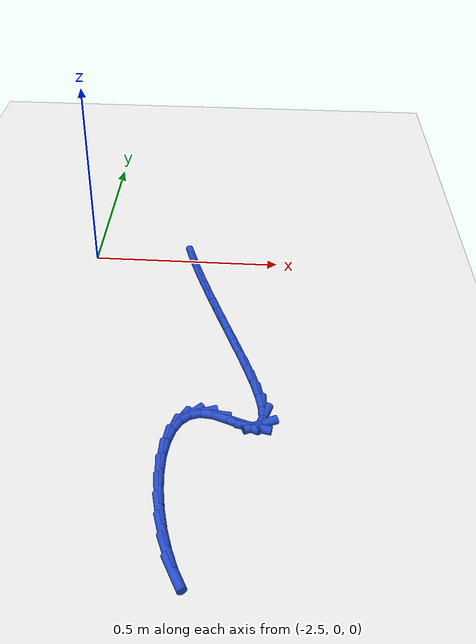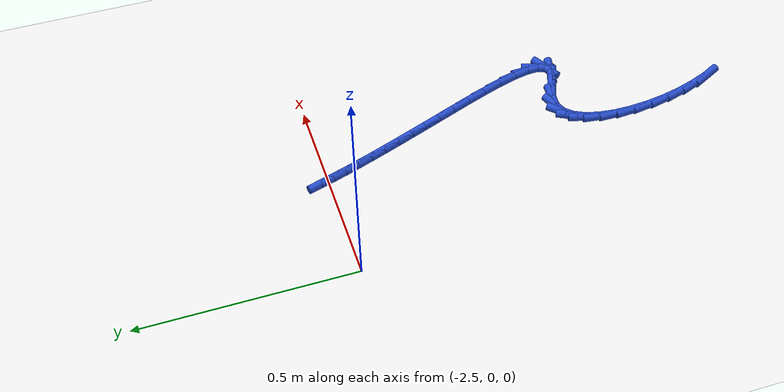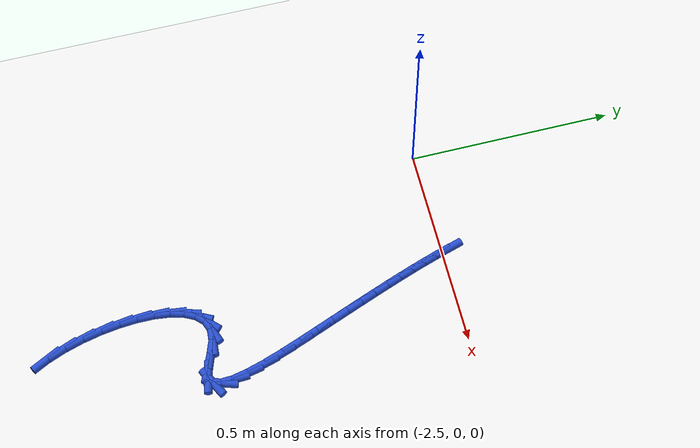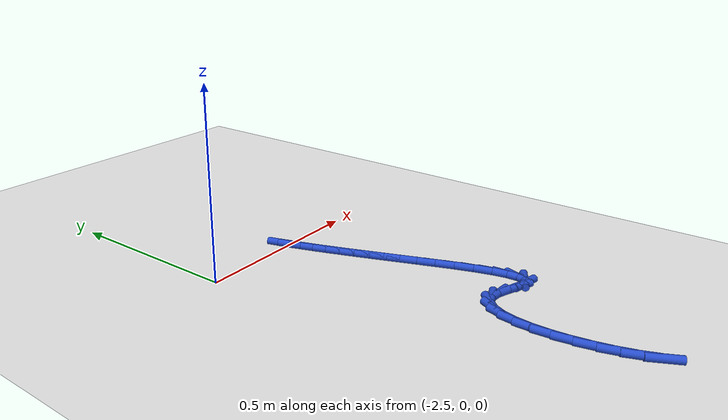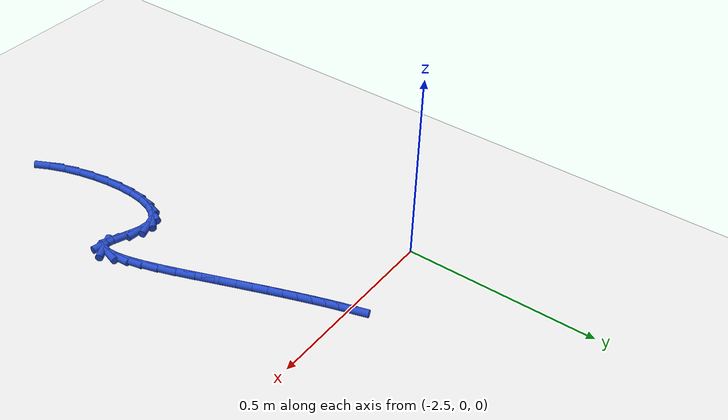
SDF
<sdf version="1.6">
 <world name="default">
  <model name="ground_plane">
   <static>1</static>
   <link name="link">
    <collision name="collision">
     <geometry><plane><normal>0 0 1</normal><size>100 100</size></plane></geometry>
     <surface><friction><ode><mu>100</mu><mu2>50</mu2></ode></friction></surface>
    </collision>
    <visual name="visual">
     <cast_shadows>0</cast_shadows>
     <geometry><plane><normal>0 0 1</normal><size>100 100</size></plane></geometry>
     <material>
      <script><uri>file://media/materials/scripts/gazebo.material</uri><name>Gazebo/WhiteGlow</name></script>
     </material>
    </visual>
   </link>
  </model>
  <model name="line">
   <link name="link_136">
    <pose>-2.2342814332603473 0.012278745024678177 0.01 0 1.57 -1.271771522409557</pose>
    <collision name="collision">
     <geometry><cylinder><radius>0.01</radius><length>0.08</length></cylinder></geometry>
    </collision>
    <visual name="visual">
     <material>
      <script><name>Gazebo/Blue</name><uri>file://media/materials/scripts/gazebo.material</uri></script>
     </material>
     <geometry><cylinder><radius>0.01</radius><length>0.08</length></cylinder></geometry>
    </visual>
   </link>
   <link name="link_137">
    <pose>-2.2251247984309335 -0.017424737117383467 0.01 0 1.57 -1.2547677872495726</pose>
    <collision name="collision">
     <geometry><cylinder><radius>0.01</radius><length>0.08</length></cylinder></geometry>
    </collision>
    <visual name="visual">
     <material>
      <script><name>Gazebo/Blue</name><uri>file://media/materials/scripts/gazebo.material</uri></script>
     </material>
     <geometry><cylinder><radius>0.01</radius><length>0.08</length></cylinder></geometry>
    </visual>
   </link>
   <link name="link_138">
    <pose>-2.215088519485784 -0.04811788806376697 0.01 0 1.57 -1.2403514606112411</pose>
    <collision name="collision">
     <geometry><cylinder><radius>0.01</radius><length>0.08</length></cylinder></geometry>
    </collision>
    <visual name="visual">
     <material>
      <script><name>Gazebo/Blue</name><uri>file://media/materials/scripts/gazebo.material</uri></script>
     </material>
     <geometry><cylinder><radius>0.01</radius><length>0.08</length></cylinder></geometry>
    </visual>
   </link>
   <link name="link_139">
    <pose>-2.2041684321250394 -0.07995283531507365 0.01 0 1.57 -1.2284064452120103</pose>
    <collision name="collision">
     <geometry><cylinder><radius>0.01</radius><length>0.08</length></cylinder></geometry>
    </collision>
    <visual name="visual">
     <material>
      <script><name>Gazebo/Blue</name><uri>file://media/materials/scripts/gazebo.material</uri></script>
     </material>
     <geometry><cylinder><radius>0.01</radius><length>0.08</length></cylinder></geometry>
    </visual>
   </link>
   <link name="link_140">
    <pose>-2.1923603720488414 -0.11308170637190762 0.01 0 1.57 -1.2187722670878132</pose>
    <collision name="collision">
     <geometry><cylinder><radius>0.01</radius><length>0.08</length></cylinder></geometry>
    </collision>
    <visual name="visual">
     <material>
      <script><name>Gazebo/Blue</name><uri>file://media/materials/scripts/gazebo.material</uri></script>
     </material>
     <geometry><cylinder><radius>0.01</radius><length>0.08</length></cylinder></geometry>
    </visual>
   </link>
   <link name="link_141">
    <pose>-2.1796601749573306 -0.14765662873487306 0.01 0 1.57 -1.2112603525877768</pose>
    <collision name="collision">
     <geometry><cylinder><radius>0.01</radius><length>0.08</length></cylinder></geometry>
    </collision>
    <visual name="visual">
     <material>
      <script><name>Gazebo/Blue</name><uri>file://media/materials/scripts/gazebo.material</uri></script>
     </material>
     <geometry><cylinder><radius>0.01</radius><length>0.08</length></cylinder></geometry>
    </visual>
   </link>
   <link name="link_142">
    <pose>-2.1660636765506474 -0.18382972990457105 0.01 0 1.57 -1.2056676313446881</pose>
    <collision name="collision">
     <geometry><cylinder><radius>0.01</radius><length>0.08</length></cylinder></geometry>
    </collision>
    <visual name="visual">
     <material>
      <script><name>Gazebo/Blue</name><uri>file://media/materials/scripts/gazebo.material</uri></script>
     </material>
     <geometry><cylinder><radius>0.01</radius><length>0.08</length></cylinder></geometry>
    </visual>
   </link>
   <link name="link_143">
    <pose>-2.1515667125289335 -0.221753137381607 0.01 0 1.57 -1.2017872265472715</pose>
    <collision name="collision">
     <geometry><cylinder><radius>0.01</radius><length>0.08</length></cylinder></geometry>
    </collision>
    <visual name="visual">
     <material>
      <script><name>Gazebo/Blue</name><uri>file://media/materials/scripts/gazebo.material</uri></script>
     </material>
     <geometry><cylinder><radius>0.01</radius><length>0.08</length></cylinder></geometry>
    </visual>
   </link>
   <link name="link_144">
    <pose>-2.1361651185923303 -0.26157897866658175 0.01 0 1.57 -1.1994163757927954</pose>
    <collision name="collision">
     <geometry><cylinder><radius>0.01</radius><length>0.08</length></cylinder></geometry>
    </collision>
    <visual name="visual">
     <material>
      <script><name>Gazebo/Blue</name><uri>file://media/materials/scripts/gazebo.material</uri></script>
     </material>
     <geometry><cylinder><radius>0.01</radius><length>0.08</length></cylinder></geometry>
    </visual>
   </link>
   <link name="link_145">
    <pose>-2.119854730440977 -0.3034593812601009 0.01 0 1.57 -1.1983691191781265</pose>
    <collision name="collision">
     <geometry><cylinder><radius>0.01</radius><length>0.08</length></cylinder></geometry>
    </collision>
    <visual name="visual">
     <material>
      <script><name>Gazebo/Blue</name><uri>file://media/materials/scripts/gazebo.material</uri></script>
     </material>
     <geometry><cylinder><radius>0.01</radius><length>0.08</length></cylinder></geometry>
    </visual>
   </link>
   <link name="link_146">
    <pose>-2.1026322792978007 -0.34754511490806633 0.01 0 1.57 -1.2011240713526157</pose>
    <collision name="collision">
     <geometry><cylinder><radius>0.01</radius><length>0.08</length></cylinder></geometry>
    </collision>
    <visual name="visual">
     <material>
      <script><name>Gazebo/Blue</name><uri>file://media/materials/scripts/gazebo.material</uri></script>
     </material>
     <geometry><cylinder><radius>0.01</radius><length>0.08</length></cylinder></geometry>
    </visual>
   </link>
   <link name="link_147">
    <pose>-2.08483925168569 -0.3934642455939018 0.01 0 1.57 -1.214283590411164</pose>
    <collision name="collision">
     <geometry><cylinder><radius>0.01</radius><length>0.08</length></cylinder></geometry>
    </collision>
    <visual name="visual">
     <material>
      <script><name>Gazebo/Blue</name><uri>file://media/materials/scripts/gazebo.material</uri></script>
     </material>
     <geometry><cylinder><radius>0.01</radius><length>0.08</length></cylinder></geometry>
    </visual>
   </link>
   <link name="link_148">
    <pose>-2.067681554602729 -0.4395342406393232 0.01 0 1.57 -1.2408589274230708</pose>
    <collision name="collision">
     <geometry><cylinder><radius>0.01</radius><length>0.08</length></cylinder></geometry>
    </collision>
    <visual name="visual">
     <material>
      <script><name>Gazebo/Blue</name><uri>file://media/materials/scripts/gazebo.material</uri></script>
     </material>
     <geometry><cylinder><radius>0.01</radius><length>0.08</length></cylinder></geometry>
    </visual>
   </link>
   <link name="link_149">
    <pose>-2.0524983987134195 -0.48387045784663635 0.01 0 1.57 -1.287152063394015</pose>
    <collision name="collision">
     <geometry><cylinder><radius>0.01</radius><length>0.08</length></cylinder></geometry>
    </collision>
    <visual name="visual">
     <material>
      <script><name>Gazebo/Blue</name><uri>file://media/materials/scripts/gazebo.material</uri></script>
     </material>
     <geometry><cylinder><radius>0.01</radius><length>0.08</length></cylinder></geometry>
    </visual>
   </link>
   <link name="link_150">
    <pose>-2.040628994682267 -0.5245882550181413 0.01 0 1.57 -1.368668017871497</pose>
    <collision name="collision">
     <geometry><cylinder><radius>0.01</radius><length>0.08</length></cylinder></geometry>
    </collision>
    <visual name="visual">
     <material>
      <script><name>Gazebo/Blue</name><uri>file://media/materials/scripts/gazebo.material</uri></script>
     </material>
     <geometry><cylinder><radius>0.01</radius><length>0.08</length></cylinder></geometry>
    </visual>
   </link>
   <link name="link_151">
    <pose>-2.0334125531737772 -0.5598029899561427 0.01 0 1.57 -1.526829029165024</pose>
    <collision name="collision">
     <geometry><cylinder><radius>0.01</radius><length>0.08</length></cylinder></geometry>
    </collision>
    <visual name="visual">
     <material>
      <script><name>Gazebo/Blue</name><uri>file://media/materials/scripts/gazebo.material</uri></script>
     </material>
     <geometry><cylinder><radius>0.01</radius><length>0.08</length></cylinder></geometry>
    </visual>
   </link>
   <link name="link_152">
    <pose>-2.032188284852453 -0.5876300204629441 0.01 0 1.57 1.2528232010554539</pose>
    <collision name="collision">
     <geometry><cylinder><radius>0.01</radius><length>0.08</length></cylinder></geometry>
    </collision>
    <visual name="visual">
     <material>
      <script><name>Gazebo/Blue</name><uri>file://media/materials/scripts/gazebo.material</uri></script>
     </material>
     <geometry><cylinder><radius>0.01</radius><length>0.08</length></cylinder></geometry>
    </visual>
   </link>
   <link name="link_153">
    <pose>-2.0382954003827995 -0.6061847043408468 0.01 0 1.57 0.46412605458449396</pose>
    <collision name="collision">
     <geometry><cylinder><radius>0.01</radius><length>0.08</length></cylinder></geometry>
    </collision>
    <visual name="visual">
     <material>
      <script><name>Gazebo/Blue</name><uri>file://media/materials/scripts/gazebo.material</uri></script>
     </material>
     <geometry><cylinder><radius>0.01</radius><length>0.08</length></cylinder></geometry>
    </visual>
   </link>
   <link name="link_154">
    <pose>-2.0530731104293225 -0.613582399392155 0.01 0 1.57 -0.20790325013646488</pose>
    <collision name="collision">
     <geometry><cylinder><radius>0.01</radius><length>0.08</length></cylinder></geometry>
    </collision>
    <visual name="visual">
     <material>
      <script><name>Gazebo/Blue</name><uri>file://media/materials/scripts/gazebo.material</uri></script>
     </material>
     <geometry><cylinder><radius>0.01</radius><length>0.08</length></cylinder></geometry>
    </visual>
   </link>
   <link name="link_155">
    <pose>-2.077555689545091 -0.6084177646659257 0.01 0 1.57 -0.3929622097244167</pose>
    <collision name="collision">
     <geometry><cylinder><radius>0.01</radius><length>0.08</length></cylinder></geometry>
    </collision>
    <visual name="visual">
     <material>
      <script><name>Gazebo/Blue</name><uri>file://media/materials/scripts/gazebo.material</uri></script>
     </material>
     <geometry><cylinder><radius>0.01</radius><length>0.08</length></cylinder></geometry>
    </visual>
   </link>
   <link name="link_156">
    <pose>-2.108861243191397 -0.5954409280383246 0.01 0 1.57 -0.34719489384447033</pose>
    <collision name="collision">
     <geometry><cylinder><radius>0.01</radius><length>0.08</length></cylinder></geometry>
    </collision>
    <visual name="visual">
     <material>
      <script><name>Gazebo/Blue</name><uri>file://media/materials/scripts/gazebo.material</uri></script>
     </material>
     <geometry><cylinder><radius>0.01</radius><length>0.08</length></cylinder></geometry>
    </visual>
   </link>
   <link name="link_157">
    <pose>-2.1413930544177555 -0.5836691989946786 0.01 0 1.57 -0.08373876678344971</pose>
    <collision name="collision">
     <geometry><cylinder><radius>0.01</radius><length>0.08</length></cylinder></geometry>
    </collision>
    <visual name="visual">
     <material>
      <script><name>Gazebo/Blue</name><uri>file://media/materials/scripts/gazebo.material</uri></script>
     </material>
     <geometry><cylinder><radius>0.01</radius><length>0.08</length></cylinder></geometry>
    </visual>
   </link>
   <link name="link_158">
    <pose>-2.1700277145594646 -0.5812657474266625 0.01 0 1.57 0.3479711095728914</pose>
    <collision name="collision">
     <geometry><cylinder><radius>0.01</radius><length>0.08</length></cylinder></geometry>
    </collision>
    <visual name="visual">
     <material>
      <script><name>Gazebo/Blue</name><uri>file://media/materials/scripts/gazebo.material</uri></script>
     </material>
     <geometry><cylinder><radius>0.01</radius><length>0.08</length></cylinder></geometry>
    </visual>
   </link>
   <link name="link_159">
    <pose>-2.1933806010170644 -0.5897365623893875 0.01 0 1.57 0.7764618982037349</pose>
    <collision name="collision">
     <geometry><cylinder><radius>0.01</radius><length>0.08</length></cylinder></geometry>
    </collision>
    <visual name="visual">
     <material>
      <script><name>Gazebo/Blue</name><uri>file://media/materials/scripts/gazebo.material</uri></script>
     </material>
     <geometry><cylinder><radius>0.01</radius><length>0.08</length></cylinder></geometry>
    </visual>
   </link>
   <link name="link_160">
    <pose>-2.2116814254526176 -0.6077131932342643 0.01 0 1.57 1.093949602926498</pose>
    <collision name="collision">
     <geometry><cylinder><radius>0.01</radius><length>0.08</length></cylinder></geometry>
    </collision>
    <visual name="visual">
     <material>
      <script><name>Gazebo/Blue</name><uri>file://media/materials/scripts/gazebo.material</uri></script>
     </material>
     <geometry><cylinder><radius>0.01</radius><length>0.08</length></cylinder></geometry>
    </visual>
   </link>
   <link name="link_161">
    <pose>-2.225166287327148 -0.6338158153715073 0.01 0 1.57 1.3060682487593533</pose>
    <collision name="collision">
     <geometry><cylinder><radius>0.01</radius><length>0.08</length></cylinder></geometry>
    </collision>
    <visual name="visual">
     <material>
      <script><name>Gazebo/Blue</name><uri>file://media/materials/scripts/gazebo.material</uri></script>
     </material>
     <geometry><cylinder><radius>0.01</radius><length>0.08</length></cylinder></geometry>
    </visual>
   </link>
   <link name="link_162">
    <pose>-2.2340712861016803 -0.6666646042113281 0.01 0 1.57 1.4520015339895231</pose>
    <collision name="collision">
     <geometry><cylinder><radius>0.01</radius><length>0.08</length></cylinder></geometry>
    </collision>
    <visual name="visual">
     <material>
      <script><name>Gazebo/Blue</name><uri>file://media/materials/scripts/gazebo.material</uri></script>
     </material>
     <geometry><cylinder><radius>0.01</radius><length>0.08</length></cylinder></geometry>
    </visual>
   </link>
   <link name="link_163">
    <pose>-2.2386325212372413 -0.7048797351639425 0.01 0 1.57 1.5600490334846238</pose>
    <collision name="collision">
     <geometry><cylinder><radius>0.01</radius><length>0.08</length></cylinder></geometry>
    </collision>
    <visual name="visual">
     <material>
      <script><name>Gazebo/Blue</name><uri>file://media/materials/scripts/gazebo.material</uri></script>
     </material>
     <geometry><cylinder><radius>0.01</radius><length>0.08</length></cylinder></geometry>
    </visual>
   </link>
   <link name="link_164">
    <pose>-2.2390860921948543 -0.7470813836395616 0.01 0 1.57 -1.4946634619734174</pose>
    <collision name="collision">
     <geometry><cylinder><radius>0.01</radius><length>0.08</length></cylinder></geometry>
    </collision>
    <visual name="visual">
     <material>
      <script><name>Gazebo/Blue</name><uri>file://media/materials/scripts/gazebo.material</uri></script>
     </material>
     <geometry><cylinder><radius>0.01</radius><length>0.08</length></cylinder></geometry>
    </visual>
   </link>
   <link name="link_165">
    <pose>-2.235668098435545 -0.7918897250484008 0.01 0 1.57 -1.4187599169920304</pose>
    <collision name="collision">
     <geometry><cylinder><radius>0.01</radius><length>0.08</length></cylinder></geometry>
    </collision>
    <visual name="visual">
     <material>
      <script><name>Gazebo/Blue</name><uri>file://media/materials/scripts/gazebo.material</uri></script>
     </material>
     <geometry><cylinder><radius>0.01</radius><length>0.08</length></cylinder></geometry>
    </visual>
   </link>
   <link name="link_166">
    <pose>-2.228614639420339 -0.8379249348006714 0.01 0 1.57 -1.346800848486925</pose>
    <collision name="collision">
     <geometry><cylinder><radius>0.01</radius><length>0.08</length></cylinder></geometry>
    </collision>
    <visual name="visual">
     <material>
      <script><name>Gazebo/Blue</name><uri>file://media/materials/scripts/gazebo.material</uri></script>
     </material>
     <geometry><cylinder><radius>0.01</radius><length>0.08</length></cylinder></geometry>
    </visual>
   </link>
   <link name="link_167">
    <pose>-2.2181618146102604 -0.8838071883065892 0.01 0 1.57 -1.2729134033436313</pose>
    <collision name="collision">
     <geometry><cylinder><radius>0.01</radius><length>0.08</length></cylinder></geometry>
    </collision>
    <visual name="visual">
     <material>
      <script><name>Gazebo/Blue</name><uri>file://media/materials/scripts/gazebo.material</uri></script>
     </material>
     <geometry><cylinder><radius>0.01</radius><length>0.08</length></cylinder></geometry>
    </visual>
   </link>
   <link name="link_168">
    <pose>-2.2045457234663353 -0.9281566609763652 0.01 0 1.57 -1.1909452284229576</pose>
    <collision name="collision">
     <geometry><cylinder><radius>0.01</radius><length>0.08</length></cylinder></geometry>
    </collision>
    <visual name="visual">
     <material>
      <script><name>Gazebo/Blue</name><uri>file://media/materials/scripts/gazebo.material</uri></script>
     </material>
     <geometry><cylinder><radius>0.01</radius><length>0.08</length></cylinder></geometry>
    </visual>
   </link>
   <link name="link_169">
    <pose>-2.1880024654495873 -0.9695935282202152 0.01 0 1.57 -1.0929904645782784</pose>
    <collision name="collision">
     <geometry><cylinder><radius>0.01</radius><length>0.08</length></cylinder></geometry>
    </collision>
    <visual name="visual">
     <material>
      <script><name>Gazebo/Blue</name><uri>file://media/materials/scripts/gazebo.material</uri></script>
     </material>
     <geometry><cylinder><radius>0.01</radius><length>0.08</length></cylinder></geometry>
    </visual>
   </link>
  </model>
 </world>
</sdf>
